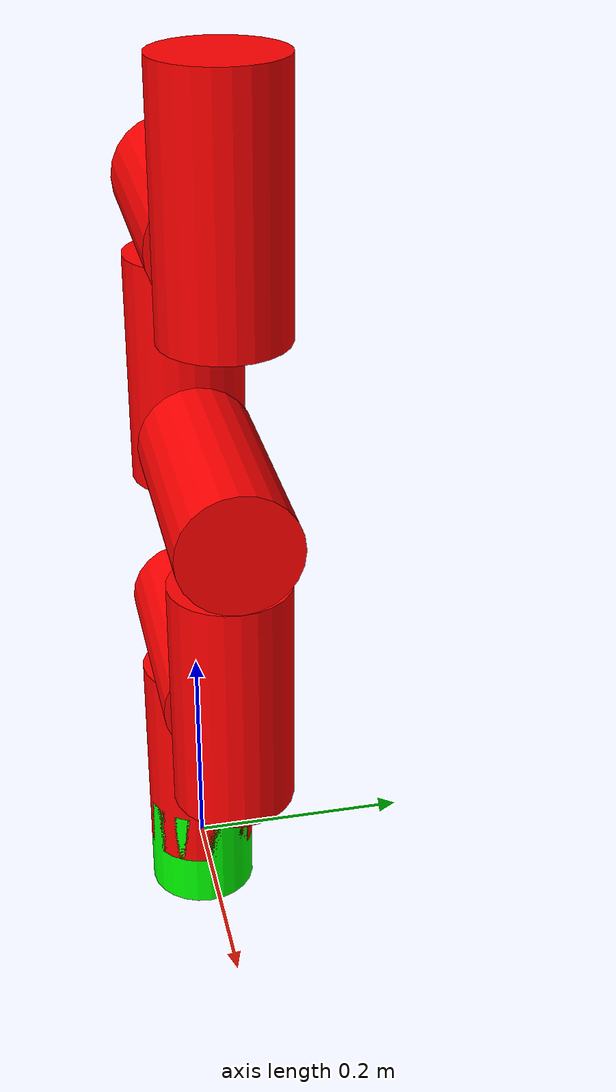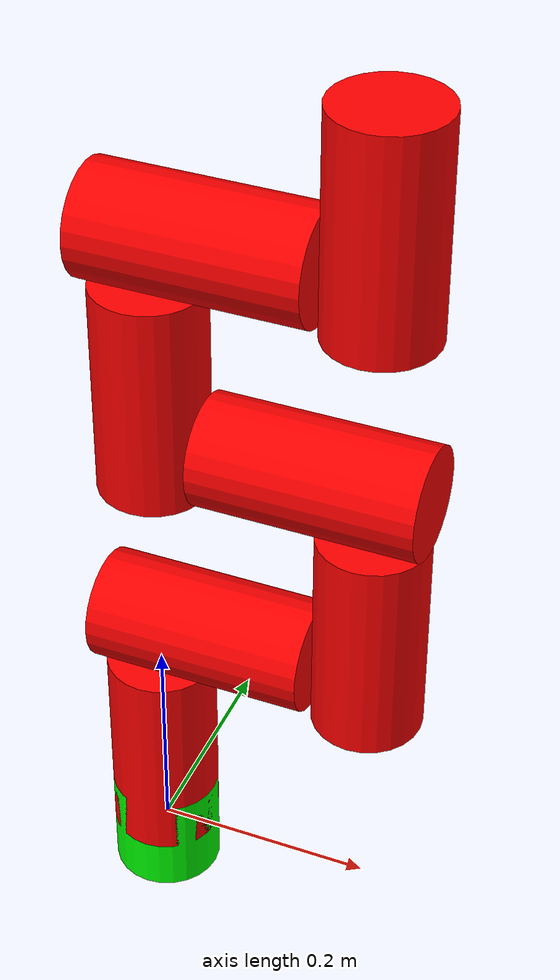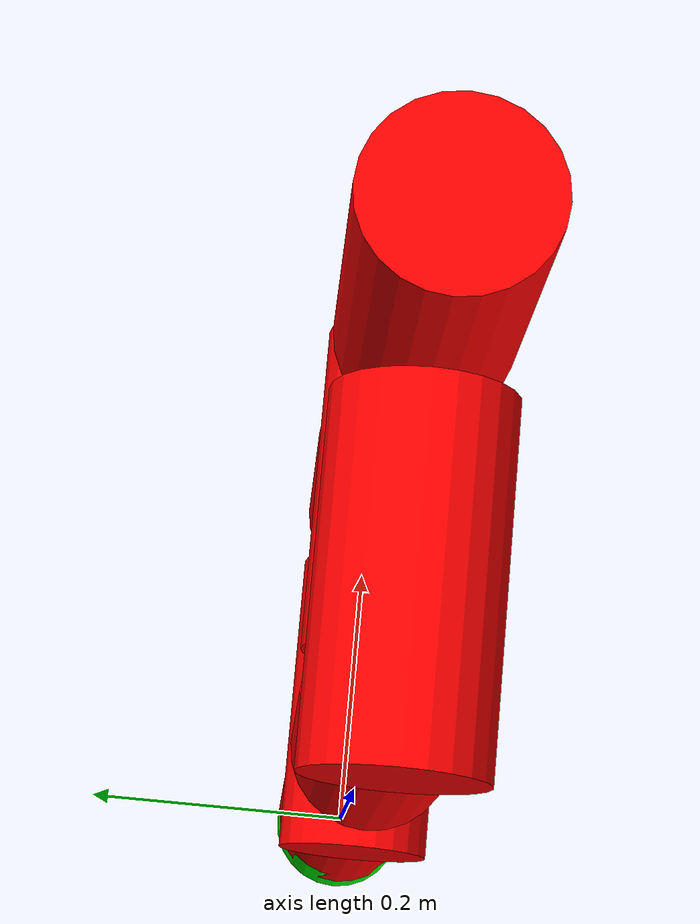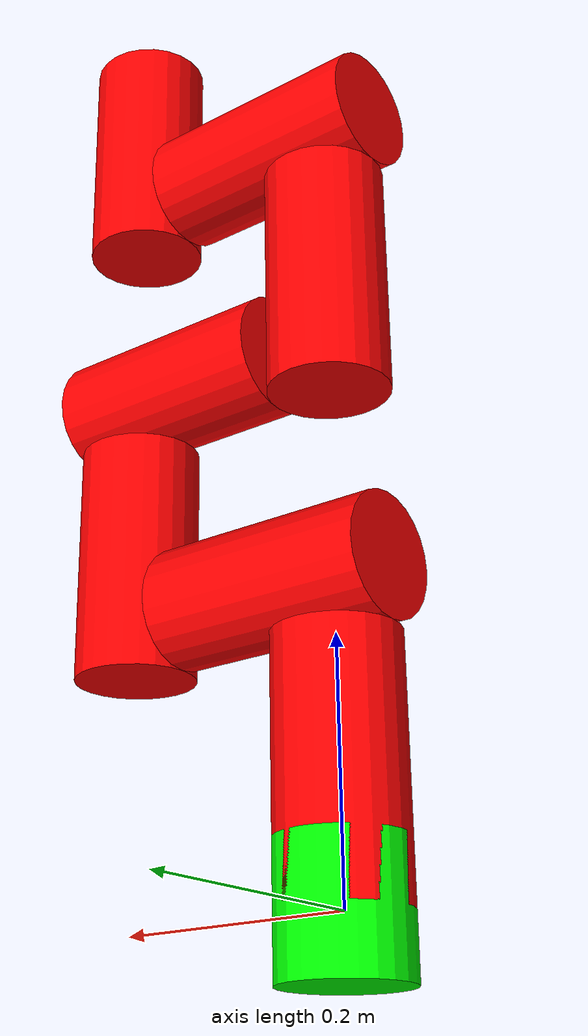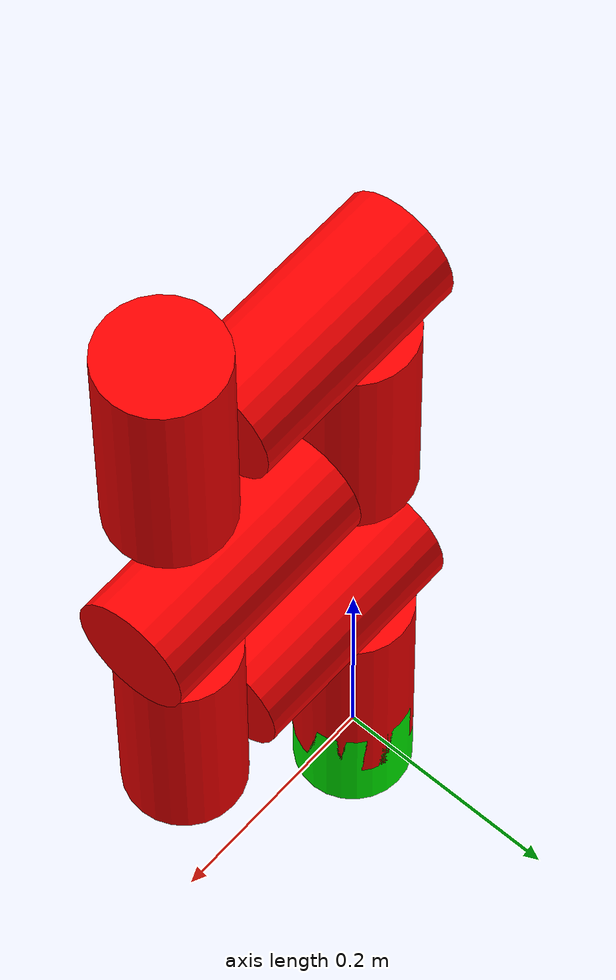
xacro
<?xml version="1.0"?>

<robot name="Kuka_LBR_iiwa7_R800" xmlns:xacro="http://wiki.ros.org/xacro">
    <xacro:include filename="$(find rl_seven_degrees_robot)/urdf/robot_macro.xacro" />

		<xacro:base_link_macro
			base_link_name="base_link">
		</xacro:base_link_macro>

		<xacro:robot_joint
			name="first_joint"
			type="revolute"
			parent="base_link"
			child="first_link">
			<origin xyz="0 0 0.1" />
			<axis xyz="0 0 1"/>
		</xacro:robot_joint>

		<xacro:robot_link name="first_link">
			<geometry>
				<cylinder length="0.2" radius="0.05"/>
			</geometry>
			<origin xyz="0 0 0" rpy="0 0 0"/>
		</xacro:robot_link>

		<xacro:robot_joint
			name="second_joint"
			type="revolute"
			parent="first_link"
			child="second_link">
			<origin xyz="0.05 0 0.15" />
			<axis xyz="1 0 0"/>
		</xacro:robot_joint>

		<xacro:robot_link name="second_link">
			<geometry>
				<cylinder length="0.2" radius="0.05"/>
			</geometry>
			<origin xyz="0 0 0" rpy="0 1.57 0"/>
		</xacro:robot_link>

    <xacro:robot_joint
			name="third_joint"
			type="revolute"
			parent="second_link"
			child="third_link">
			<origin xyz="0.15 0 0.05" />
			<axis xyz="0 0 1"/>
		</xacro:robot_joint>

    <xacro:robot_link name="third_link">
			<geometry>
				<cylinder length="0.2" radius="0.05"/>
			</geometry>
			<origin xyz="0 0 0" rpy="0 0 0"/>
		</xacro:robot_link>

    <xacro:robot_joint
			name="fourth_joint"
			type="revolute"
			parent="third_link"
			child="fourth_link">
			<origin xyz="0.05 0 0.15" />
			<axis xyz="-1 0 0"/>
		</xacro:robot_joint>

		<xacro:robot_link name="fourth_link">
			<geometry>
				<cylinder length="0.2" radius="0.05"/>
			</geometry>
			<origin xyz="-0.1 0 0" rpy="0 1.57 0"/>
		</xacro:robot_link>

    <xacro:robot_joint
			name="fifth_joint"
			type="revolute"
			parent="fourth_link"
			child="fifth_link">
			<origin xyz="-0.25 0 0.05" />
			<axis xyz="0 0 1"/>
		</xacro:robot_joint>

    <xacro:robot_link name="fifth_link">
			<geometry>
				<cylinder length="0.2" radius="0.05"/>
			</geometry>
			<origin xyz="0 0 0" rpy="0 0 0"/>
		</xacro:robot_link>

    <xacro:robot_joint
			name="sixth_joint"
			type="revolute"
			parent="fifth_link"
			child="sixth_link">
			<origin xyz="0.05 0 0.15" />
			<axis xyz="1 0 0"/>
		</xacro:robot_joint>

		<xacro:robot_link name="sixth_link">
			<geometry>
				<cylinder length="0.2" radius="0.05"/>
			</geometry>
			<origin xyz="0 0 0" rpy="0 1.57 0"/>
		</xacro:robot_link>

    <xacro:robot_joint
			name="seventh_joint"
			type="revolute"
			parent="sixth_link"
			child="seventh_link">
			<origin xyz="0.15 0 0.05" />
			<axis xyz="0 0 1"/>
		</xacro:robot_joint>

    <xacro:robot_link name="seventh_link">
			<geometry>
				<cylinder length="0.2" radius="0.05"/>
			</geometry>
			<origin xyz="0 0 0" rpy="0 0 0"/>
		</xacro:robot_link>

</robot>

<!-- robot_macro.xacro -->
<robot name="Kuka LBR iiwa7 R800" xmlns:xacro="http://wiki.ros.org/xacro">

	<xacro:macro name="base_link_macro" params="base_link_name">
		<link name="${base_link_name}">
			<visual>
				<geometry>
					<cylinder length="0.1" radius="0.05"/>
				</geometry>
				<origin rpy="0 0 0" xyz="0 0 0"/>
					<material name="green">
						<color rgba="0 1 0 1"/>
					</material>
			</visual>
			<collision>
				<geometry>
					<cylinder length="0.2" radius="0.05"/>
				</geometry>
				<origin rpy="0 0 0" xyz="0 0 0"/>
			</collision>
			<inertial>
				<mass value="1"/>
					<inertia ixx="1.0" ixy="0.0" ixz="0.0" iyy="1.0" iyz="0.0" izz="1.0"/>
					</inertial>
		</link>
	</xacro:macro>

	<xacro:macro name="robot_joint" params="name type parent child *origin *axis">
		<joint name="${name}" type="${type}">
			<parent link="${parent}" />
			<child link="${child}" />
	    <xacro:insert_block name="origin" />
			<xacro:insert_block name="axis" />
	    <limit effort="300" velocity="0.1" lower="-1.57" upper="1.57"/>
	    <dynamics damping="50" friction="1"/>
		</joint>
	</xacro:macro>

	<xacro:macro name="robot_link" params="name *geometry *origin">
		<link name="${name}">
			<visual>
				<xacro:insert_block name="geometry" />
				<xacro:insert_block name="origin" />
		    <material name="red">
		      <color rgba="1 0 0 1"/>
		    </material>
		  </visual>
		  <collision>
				<xacro:insert_block name="geometry" />
				<xacro:insert_block name="origin" />
			</collision>
			<inertial>
				<mass value="1"/>
					<inertia ixx="1.0" ixy="0.0" ixz="0.0" iyy="1.0" iyz="0.0" izz="1.0"/>
		  </inertial>
	  </link>
	</xacro:macro>

</robot>
